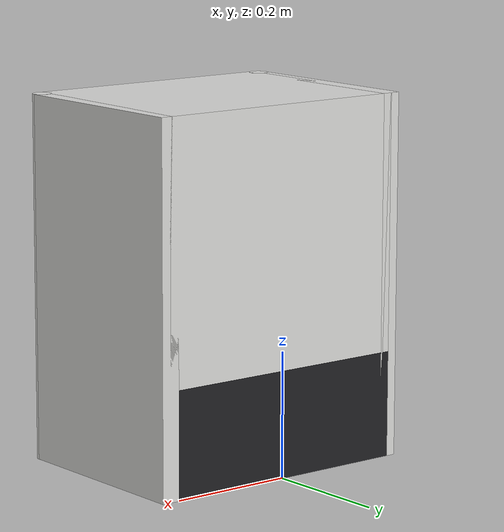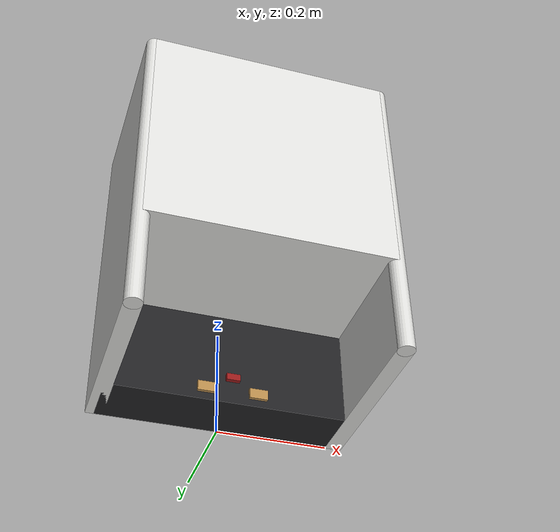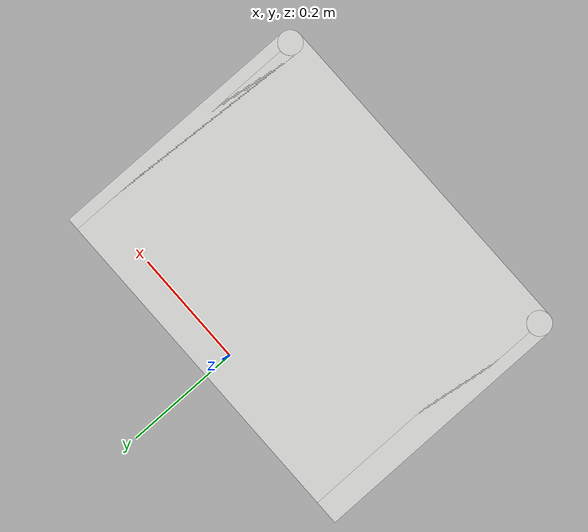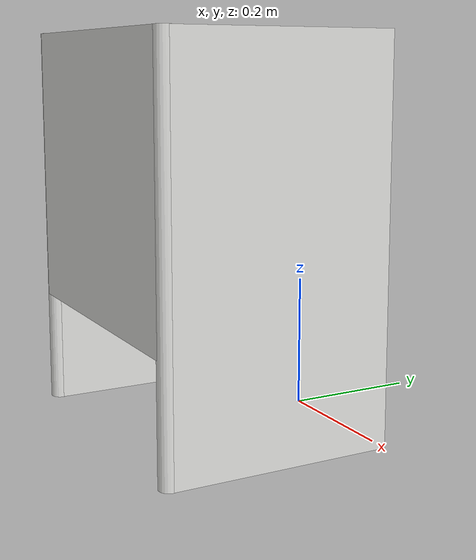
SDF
<?xml version="1.0"?>
<sdf version="1.6">
  <model name="vacuum_dock">
    <static>true</static>
    <link name="link">
      <visual name="core">
        <pose>0 -0.17 0.375 0 0 0</pose>
        <geometry><box><size>0.43 0.34 0.41</size></box></geometry>
        <material><pbr><metal><metalness>0.00</metalness><roughness>0.35</roughness></metal></pbr><ambient>0.880 0.880 0.870 1</ambient><diffuse>0.880 0.880 0.870 1</diffuse><specular>0.35 0.35 0.35 1</specular><emissive>0 0 0 1</emissive></material>
      </visual>
      <visual name="side0">
        <pose>-0.215 -0.1625 0.29 0 0 0</pose>
        <geometry><box><size>0.03 0.325 0.58</size></box></geometry>
        <material><pbr><metal><metalness>0.00</metalness><roughness>0.35</roughness></metal></pbr><ambient>0.880 0.880 0.870 1</ambient><diffuse>0.880 0.880 0.870 1</diffuse><specular>0.35 0.35 0.35 1</specular><emissive>0 0 0 1</emissive></material>
      </visual>
      <visual name="side1">
        <pose>0.215 -0.1625 0.29 0 0 0</pose>
        <geometry><box><size>0.03 0.325 0.58</size></box></geometry>
        <material><pbr><metal><metalness>0.00</metalness><roughness>0.35</roughness></metal></pbr><ambient>0.880 0.880 0.870 1</ambient><diffuse>0.880 0.880 0.870 1</diffuse><specular>0.35 0.35 0.35 1</specular><emissive>0 0 0 1</emissive></material>
      </visual>
      <visual name="tube1">
        <pose>-0.215 -0.325 0.29 0 0 0</pose>
        <geometry><cylinder><radius>0.015</radius><length>0.5806</length></cylinder></geometry>
        <material><pbr><metal><metalness>0.00</metalness><roughness>0.35</roughness></metal></pbr><ambient>0.880 0.880 0.870 1</ambient><diffuse>0.880 0.880 0.870 1</diffuse><specular>0.35 0.35 0.35 1</specular><emissive>0 0 0 1</emissive></material>
      </visual>
      <visual name="tube3">
        <pose>0.215 -0.325 0.29 0 0 0</pose>
        <geometry><cylinder><radius>0.015</radius><length>0.5806</length></cylinder></geometry>
        <material><pbr><metal><metalness>0.00</metalness><roughness>0.35</roughness></metal></pbr><ambient>0.880 0.880 0.870 1</ambient><diffuse>0.880 0.880 0.870 1</diffuse><specular>0.35 0.35 0.35 1</specular><emissive>0 0 0 1</emissive></material>
      </visual>
      <visual name="back_spacer">
        <pose>0 -0.05 0.085 0 0 0</pose>
        <geometry><box><size>0.43 0.1 0.17</size></box></geometry>
        <material><pbr><metal><metalness>0.00</metalness><roughness>0.55</roughness></metal></pbr><ambient>0.130 0.130 0.140 1</ambient><diffuse>0.130 0.130 0.140 1</diffuse><specular>0.35 0.35 0.35 1</specular><emissive>0 0 0 1</emissive></material>
      </visual>
      <visual name="ir_beacon">
        <pose>0 -0.105 0.0458 0 0 0</pose>
        <geometry><box><size>0.024 0.008 0.012</size></box></geometry>
        <material><ambient>0.25 0.05 0.05 1</ambient><diffuse>0.60 0.10 0.10 1</diffuse><specular>0.3 0.3 0.3 1</specular><emissive>0.25 0.02 0.02 1</emissive></material>
      </visual>
      <visual name="contact0">
        <pose>-0.045 -0.103 0.022 0 0 0</pose>
        <geometry><box><size>0.032 0.006 0.018</size></box></geometry>
        <material><pbr><metal><metalness>0.70</metalness><roughness>0.20</roughness></metal></pbr><ambient>0.720 0.550 0.300 1</ambient><diffuse>0.720 0.550 0.300 1</diffuse><specular>0.35 0.35 0.35 1</specular><emissive>0 0 0 1</emissive></material>
      </visual>
      <visual name="contact1">
        <pose>0.045 -0.103 0.022 0 0 0</pose>
        <geometry><box><size>0.032 0.006 0.018</size></box></geometry>
        <material><pbr><metal><metalness>0.70</metalness><roughness>0.20</roughness></metal></pbr><ambient>0.720 0.550 0.300 1</ambient><diffuse>0.720 0.550 0.300 1</diffuse><specular>0.35 0.35 0.35 1</specular><emissive>0 0 0 1</emissive></material>
      </visual>
      <collision name="core">
        <pose>0 -0.17 0.375 0 0 0</pose>
        <geometry><box><size>0.43 0.34 0.41</size></box></geometry>
      </collision>
      <collision name="side0">
        <pose>-0.215 -0.17 0.29 0 0 0</pose>
        <geometry><box><size>0.03 0.34 0.58</size></box></geometry>
      </collision>
      <collision name="side1">
        <pose>0.215 -0.17 0.29 0 0 0</pose>
        <geometry><box><size>0.03 0.34 0.58</size></box></geometry>
      </collision>
      <collision name="back_spacer">
        <pose>0 -0.05 0.085 0 0 0</pose>
        <geometry><box><size>0.43 0.1 0.17</size></box></geometry>
      </collision>
    </link>
    <allow_auto_disable>1</allow_auto_disable>
  </model>
</sdf>
